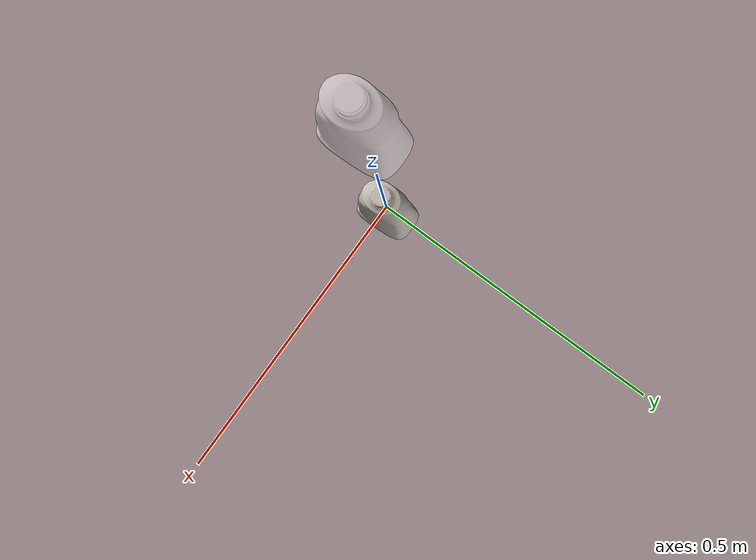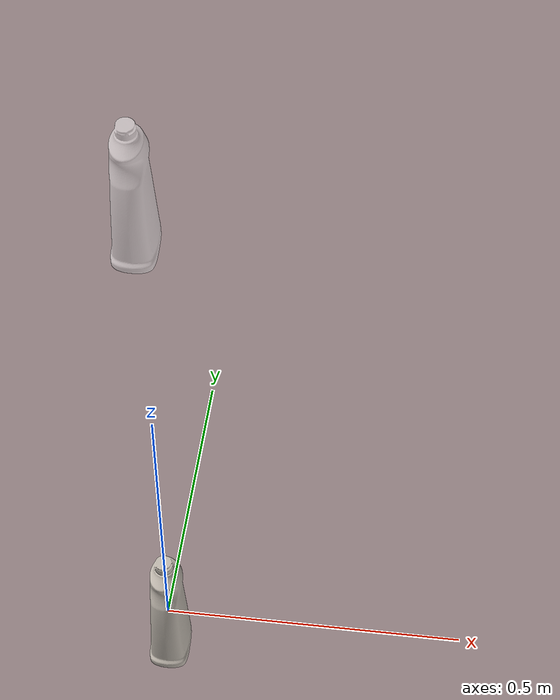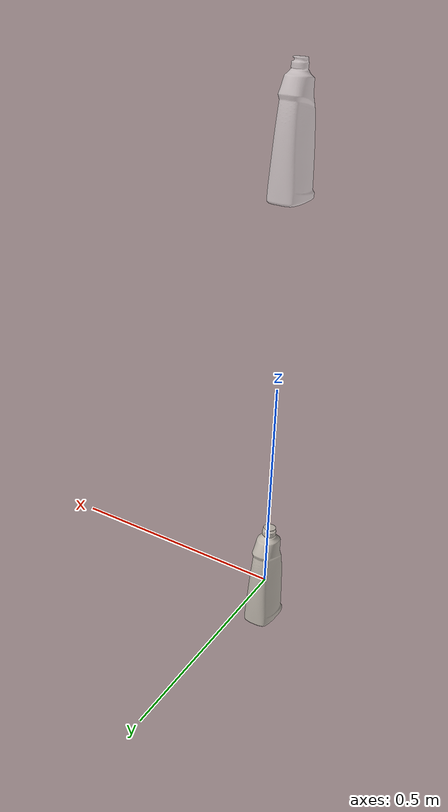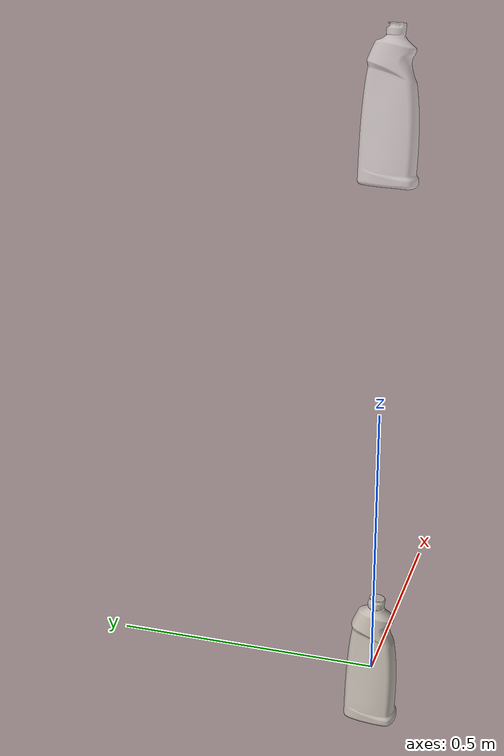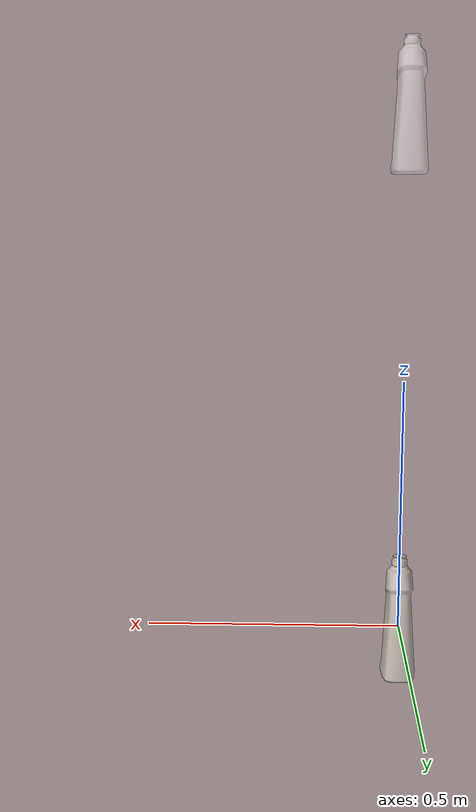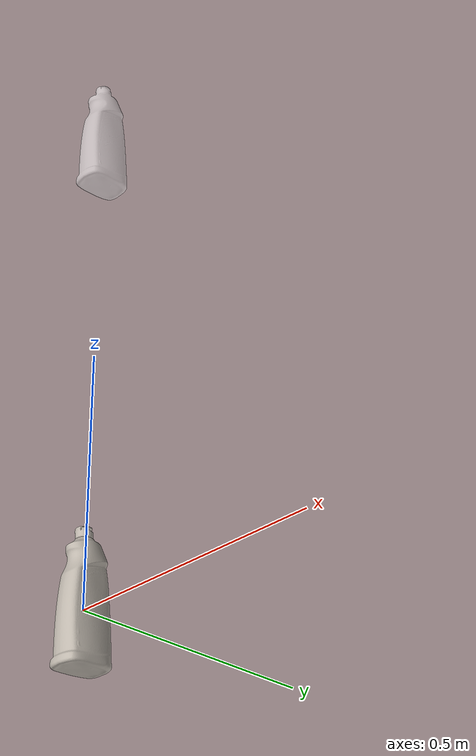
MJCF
<mujoco model="021_bleach_cleanser">
  <compiler meshdir="assets" texturedir="assets"/>

  <default>
    <default class="ycb_visual">
      <geom group="2" type="mesh" contype="0" conaffinity="0" mass="0"/>
    </default>
    <default class="ycb_collision">
      <geom group="3" type="mesh" condim="6" priority="1" solref="0.01 2" solimp="0.99 0.999 0.001 0.5 1"/>
    </default>
  </default>

  <asset>
    <texture type="2d" name="texture_map" file="texture_map.png"/>
    <material name="material_0" texture="texture_map"/>
    <mesh file="021_bleach_cleanser.obj"/>
    <mesh file="021_bleach_cleanser_collision_0.obj"/>
    <mesh file="021_bleach_cleanser_collision_1.obj"/>
    <mesh file="021_bleach_cleanser_collision_2.obj"/>
  </asset>

  <worldbody>
    <body name="body">
      <inertial pos="0 0 0" mass="0.35" diaginertia="0.0055521 0.00519834 0.00086819"/>
      <joint name="joint" type='free' damping="0.005"/>
      <geom name="vosual_geom" material="material_0" mesh="021_bleach_cleanser" class="ycb_visual"/>
      <geom name="collision_geom_0" mesh="021_bleach_cleanser_collision_0" rgba="0.677580688318911 0.030952272692056915 0.4543779444396546 1" class="ycb_collision"/>
      <geom name="collision_geom_1" mesh="021_bleach_cleanser_collision_1" rgba="0.21580045691632344 0.24817586332196606 0.7215878000866727 1" class="ycb_collision"/>
      <geom name="collision_geom_2" mesh="021_bleach_cleanser_collision_2" rgba="0.31400804666670756 0.2745682151278337 0.6272271196411815 1" class="ycb_collision"/>
      <site name="barcode" group="4" rgba="1 0 0 1" pos="-0.031735 -0.01317 -0.073959" quat="-0.5 -0.5 0.5 0.5" />
    </body>

    <body name="target_body" mocap="true" pos="0 0 1" quat="1 0 0 0">
      <geom name="target_visual_geom"
            type="mesh"
            mesh="021_bleach_cleanser"
            material="material_0"
            contype="0" conaffinity="0"
            group="2"
            rgba="1 1 1 0.5"/>
    </body>
  </worldbody>
</mujoco>
